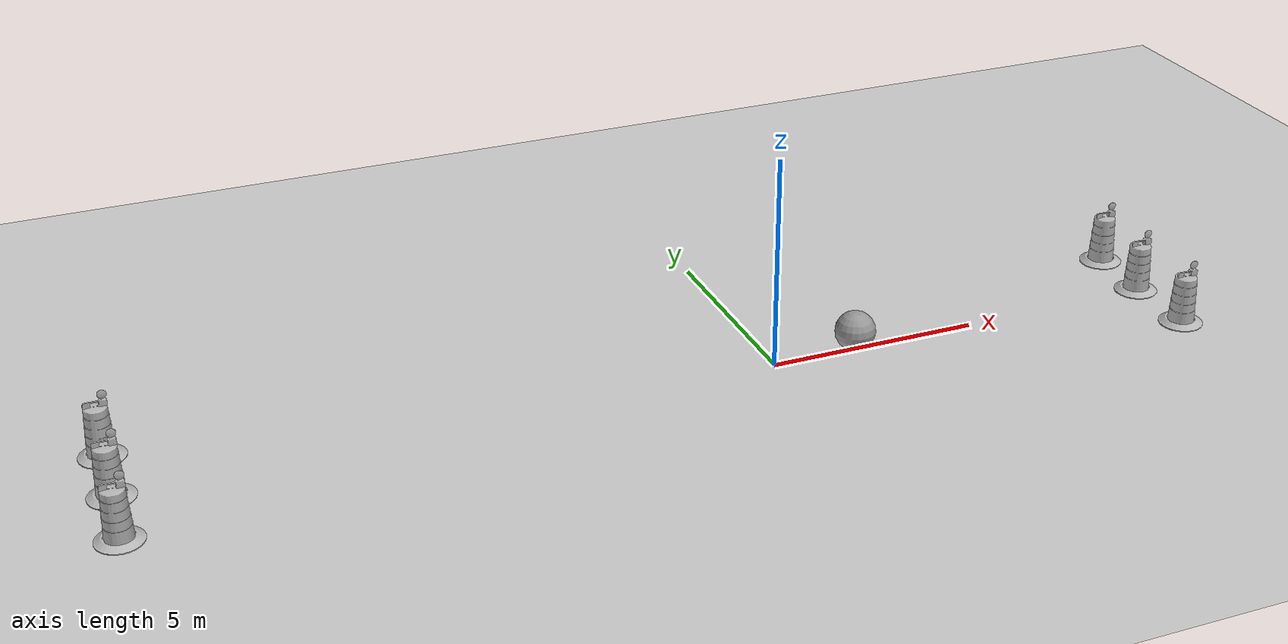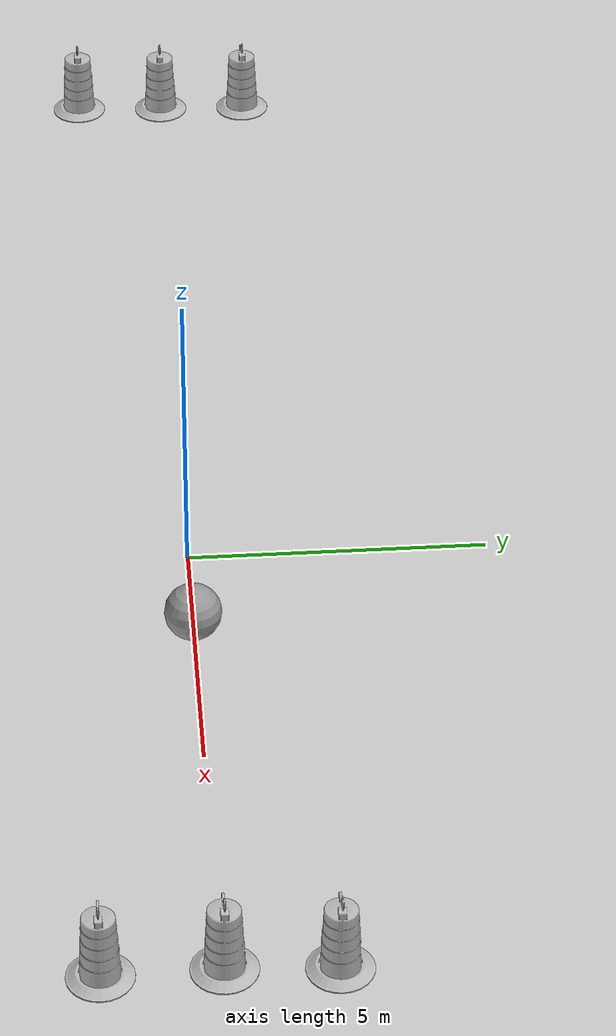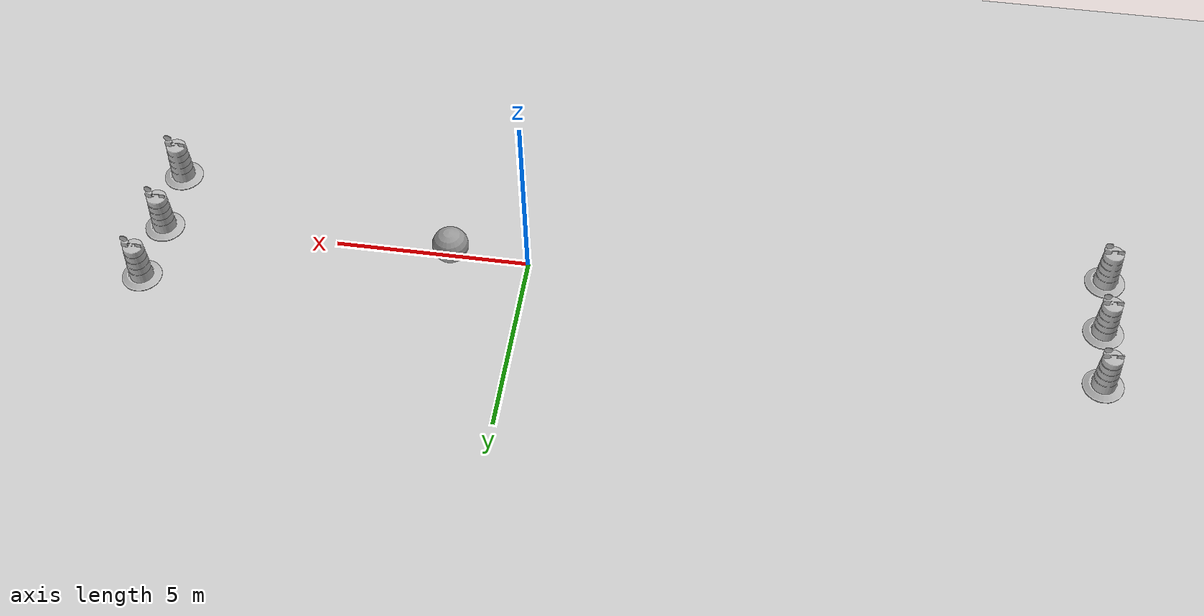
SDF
<sdf version="1.6">
 <world name="default">
  <light name="sun" type="directional">
   <pose>0 0 10 0 -0 0</pose>
   <diffuse>0.8 0.8 0.8 1</diffuse>
   <specular>0.1 0.1 0.1 1</specular>
   <attenuation>
    <range>1000</range>
    <constant>0.9</constant>
    <linear>0.01</linear>
    <quadratic>0.001</quadratic>
   </attenuation>
   <direction>-0.5 0.5 -1</direction>
  </light>
  <gravity>0 0 -9.8</gravity>
  <magnetic_field>6e-06 2.3e-05 -4.2e-05</magnetic_field>
  <atmosphere type="adiabatic"/>
  <physics name="default_physics" default="0" type="ode">
   <max_step_size>0.01</max_step_size>
   <real_time_factor>1</real_time_factor>
   <real_time_update_rate>100</real_time_update_rate>
   <ode>
    <solver>
     <type>quick</type>
     <iters>100</iters>
     <precon_iters>0</precon_iters>
     <sor>1</sor>
     <use_dynamic_moi_rescaling>0</use_dynamic_moi_rescaling>
    </solver>
    <constraints>
     <cfm>0</cfm>
     <erp>0.5</erp>
     <contact_max_correcting_vel>1000</contact_max_correcting_vel>
     <contact_surface_layer>0</contact_surface_layer>
    </constraints>
   </ode>
  </physics>
  <scene><ambient>0.4 0.4 0.4 1</ambient><background>0.7 0.7 0.7 1</background><shadows>0</shadows></scene>
  <spherical_coordinates>
   <surface_model>EARTH_WGS84</surface_model>
   <latitude_deg>0</latitude_deg>
   <longitude_deg>0</longitude_deg>
   <elevation>0</elevation>
   <heading_deg>0</heading_deg>
  </spherical_coordinates>
  <model name="Construction Barrel">
   <static>1</static>
   <link name="link">
    <inertial>
     <pose>0 0 0.4 0 -0 0</pose>
     <mass>500</mass>
     <inertia><ixx>51.2096</ixx><iyy>51.2096</iyy><izz>25</izz><ixy>0</ixy><ixz>0</ixz><iyz>0</iyz></inertia>
    </inertial>
    <collision name="collision">
     <geometry>
      <mesh><uri>model://construction_barrel/meshes/construction_barrel.dae</uri><scale>1 1 1</scale></mesh>
     </geometry>
    </collision>
    <visual name="visual">
     <geometry>
      <mesh><uri>model://construction_barrel/meshes/construction_barrel.dae</uri><scale>1 1 1</scale></mesh>
     </geometry>
    </visual>
   </link>
   <pose>-14.5057 1.82601 0 0 -0 0</pose>
  </model>
  <model name="Construction Barrel_clone">
   <static>1</static>
   <link name="link">
    <inertial>
     <pose>0 0 0.4 0 -0 0</pose>
     <mass>500</mass>
     <inertia><ixx>51.2096</ixx><iyy>51.2096</iyy><izz>25</izz><ixy>0</ixy><ixz>0</ixz><iyz>0</iyz></inertia>
    </inertial>
    <collision name="collision">
     <geometry>
      <mesh><uri>model://construction_barrel/meshes/construction_barrel.dae</uri><scale>1 1 1</scale></mesh>
     </geometry>
    </collision>
    <visual name="visual">
     <geometry>
      <mesh><uri>model://construction_barrel/meshes/construction_barrel.dae</uri><scale>1 1 1</scale></mesh>
     </geometry>
    </visual>
   </link>
   <pose>-14.5548 0.199441 0 0 -0 0</pose>
  </model>
  <model name="Construction Barrel_clone_0">
   <static>1</static>
   <link name="link">
    <inertial>
     <pose>0 0 0.4 0 -0 0</pose>
     <mass>500</mass>
     <inertia><ixx>51.2096</ixx><iyy>51.2096</iyy><izz>25</izz><ixy>0</ixy><ixz>0</ixz><iyz>0</iyz></inertia>
    </inertial>
    <collision name="collision">
     <geometry>
      <mesh><uri>model://construction_barrel/meshes/construction_barrel.dae</uri><scale>1 1 1</scale></mesh>
     </geometry>
    </collision>
    <visual name="visual">
     <geometry>
      <mesh><uri>model://construction_barrel/meshes/construction_barrel.dae</uri><scale>1 1 1</scale></mesh>
     </geometry>
    </visual>
   </link>
   <pose>-14.6395 -1.42783 0 0 -0 0</pose>
  </model>
  <model name="Construction Barrel_clone_1">
   <static>1</static>
   <link name="link">
    <inertial>
     <pose>0 0 0.4 0 -0 0</pose>
     <mass>500</mass>
     <inertia><ixx>51.2096</ixx><iyy>51.2096</iyy><izz>25</izz><ixy>0</ixy><ixz>0</ixz><iyz>0</iyz></inertia>
    </inertial>
    <collision name="collision">
     <geometry>
      <mesh><uri>model://construction_barrel/meshes/construction_barrel.dae</uri><scale>1 1 1</scale></mesh>
     </geometry>
    </collision>
    <visual name="visual">
     <geometry>
      <mesh><uri>model://construction_barrel/meshes/construction_barrel.dae</uri><scale>1 1 1</scale></mesh>
     </geometry>
    </visual>
   </link>
   <pose>9.70809 1.72229 0 0 -0 0</pose>
  </model>
  <model name="Construction Barrel_clone_2">
   <static>1</static>
   <link name="link">
    <inertial>
     <pose>0 0 0.4 0 -0 0</pose>
     <mass>500</mass>
     <inertia><ixx>51.2096</ixx><iyy>51.2096</iyy><izz>25</izz><ixy>0</ixy><ixz>0</ixz><iyz>0</iyz></inertia>
    </inertial>
    <collision name="collision">
     <geometry>
      <mesh><uri>model://construction_barrel/meshes/construction_barrel.dae</uri><scale>1 1 1</scale></mesh>
     </geometry>
    </collision>
    <visual name="visual">
     <geometry>
      <mesh><uri>model://construction_barrel/meshes/construction_barrel.dae</uri><scale>1 1 1</scale></mesh>
     </geometry>
    </visual>
   </link>
   <pose>9.63892 -1.74012 0 0 -0 0</pose>
  </model>
  <model name="Construction Barrel_clone_3">
   <static>1</static>
   <link name="link">
    <inertial>
     <pose>0 0 0.4 0 -0 0</pose>
     <mass>500</mass>
     <inertia><ixx>51.2096</ixx><iyy>51.2096</iyy><izz>25</izz><ixy>0</ixy><ixz>0</ixz><iyz>0</iyz></inertia>
    </inertial>
    <collision name="collision">
     <geometry>
      <mesh><uri>model://construction_barrel/meshes/construction_barrel.dae</uri><scale>1 1 1</scale></mesh>
     </geometry>
    </collision>
    <visual name="visual">
     <geometry>
      <mesh><uri>model://construction_barrel/meshes/construction_barrel.dae</uri><scale>1 1 1</scale></mesh>
     </geometry>
    </visual>
   </link>
   <pose>9.61273 0.053111 0 0 -0 0</pose>
  </model>
  <model name="neobotix_ground_plane">
   <static>1</static>
   <link name="link">
    <collision name="collision">
     <geometry><plane><normal>0 0 1</normal><size>100 100</size></plane></geometry>
     <surface><friction><ode><mu>100</mu><mu2>50</mu2></ode></friction></surface>
    </collision>
    <visual name="visual">
     <cast_shadows>0</cast_shadows>
     <geometry><plane><normal>0 0 1</normal><size>100 100</size></plane></geometry>
     <material>
      <script>
       <uri>model://neobotix_ground_plane/materials/scripts</uri>
       <uri>model://neobotix_ground_plane/materials/textures/</uri>
       <name>NeobotixGroundPlane/Image</name>
      </script>
     </material>
    </visual>
   </link>
   <pose>15.5395 -0.113375 0 0 -0 0</pose>
  </model>
  <light name="user_point_light_0" type="point">
   <pose>-3.57672 4.80444 1 0 -0 0</pose>
   <diffuse>0.5 0.5 0.5 1</diffuse>
   <specular>0.1 0.1 0.1 1</specular>
   <attenuation>
    <range>20</range>
    <constant>0.5</constant>
    <linear>0.01</linear>
    <quadratic>0.001</quadratic>
   </attenuation>
   <cast_shadows>0</cast_shadows>
   <direction>0 0 -1</direction>
  </light>
  <light name="user_point_light_1" type="point">
   <pose>6.41054 -3.35763 1 0 -0 0</pose>
   <diffuse>0.5 0.5 0.5 1</diffuse>
   <specular>0.1 0.1 0.1 1</specular>
   <attenuation>
    <range>20</range>
    <constant>0.5</constant>
    <linear>0.01</linear>
    <quadratic>0.001</quadratic>
   </attenuation>
   <cast_shadows>0</cast_shadows>
   <direction>0 0 -1</direction>
  </light>
  <light name="user_point_light_2" type="point">
   <pose>-10.9222 -10.872 1 0 -0 0</pose>
   <diffuse>0.5 0.5 0.5 1</diffuse>
   <specular>0.1 0.1 0.1 1</specular>
   <attenuation>
    <range>20</range>
    <constant>0.5</constant>
    <linear>0.01</linear>
    <quadratic>0.001</quadratic>
   </attenuation>
   <cast_shadows>0</cast_shadows>
   <direction>0 0 -1</direction>
  </light>
  <light name="user_point_light_3" type="point">
   <pose>0.760989 2.12463 1 0 -0 0</pose>
   <diffuse>0.5 0.5 0.5 1</diffuse>
   <specular>0.1 0.1 0.1 1</specular>
   <attenuation>
    <range>20</range>
    <constant>0.5</constant>
    <linear>0.01</linear>
    <quadratic>0.001</quadratic>
   </attenuation>
   <cast_shadows>0</cast_shadows>
   <direction>0 0 -1</direction>
  </light>
  <audio><device>default</device></audio>
  <model name="unit_sphere">
   <pose>2 0 0.46964 0 -0 0</pose>
   <link name="link">
    <inertial>
     <mass>1</mass>
     <inertia><ixx>0.1</ixx><ixy>0</ixy><ixz>0</ixz><iyy>0.1</iyy><iyz>0</iyz><izz>0.1</izz></inertia>
    </inertial>
    <collision name="collision"><geometry><sphere><radius>0.46964</radius></sphere></geometry></collision>
    <visual name="visual">
     <geometry><sphere><radius>0.46964</radius></sphere></geometry>
     <material>
      <script><name>Gazebo/Grey</name><uri>file://media/materials/scripts/gazebo.material</uri></script>
     </material>
    </visual>
   </link>
  </model>
 </world>
</sdf>
